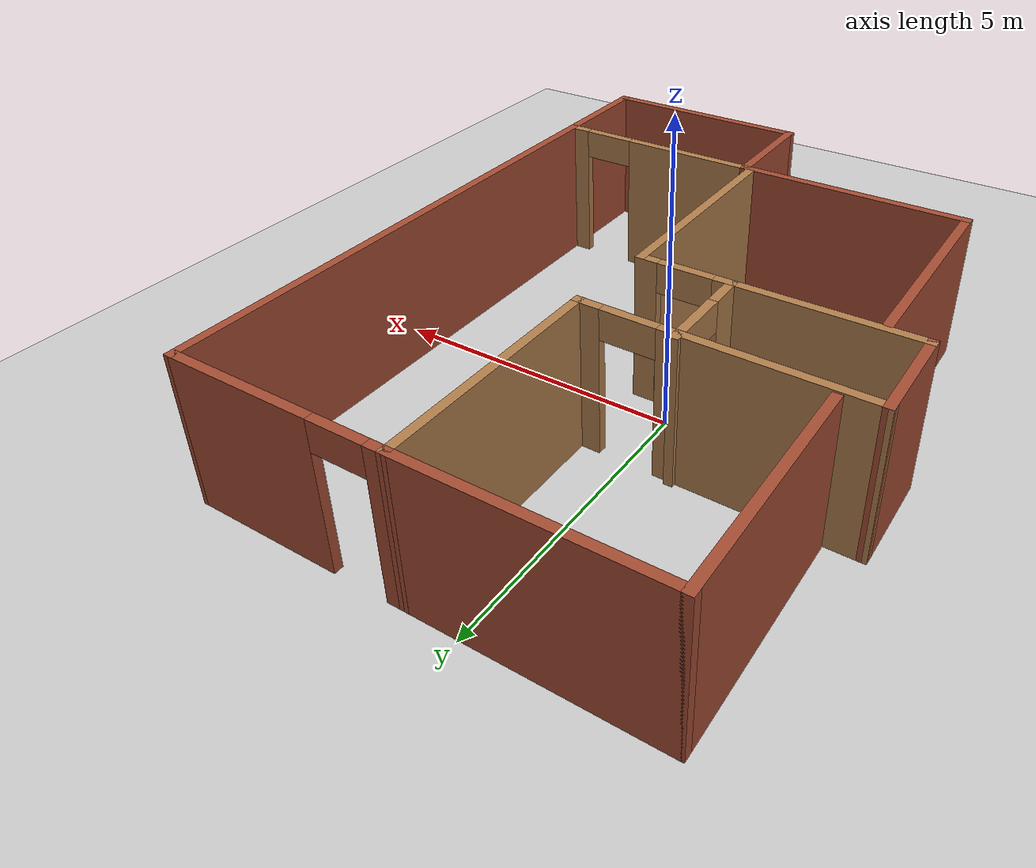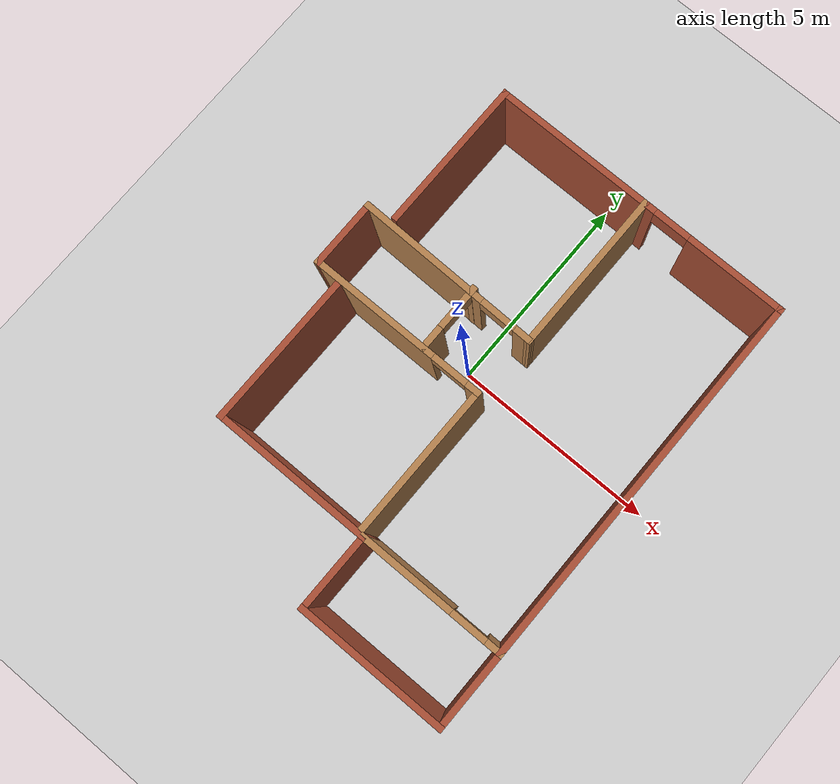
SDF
<sdf version="1.7">
 <world name="default">
  <light name="sun" type="directional">
   <pose>0 0 10 0 -0 0</pose>
   <diffuse>0.8 0.8 0.8 1</diffuse>
   <specular>0.2 0.2 0.2 1</specular>
   <attenuation>
    <range>1000</range>
    <constant>0.9</constant>
    <linear>0.01</linear>
    <quadratic>0.001</quadratic>
   </attenuation>
   <direction>-0.5 0.1 -0.9</direction>
   <spot><inner_angle>0</inner_angle><outer_angle>0</outer_angle><falloff>0</falloff></spot>
  </light>
  <model name="ground_plane">
   <static>1</static>
   <link name="link">
    <collision name="collision">
     <geometry><plane><normal>0 0 1</normal><size>100 100</size></plane></geometry>
     <surface><friction><ode><mu>100</mu><mu2>50</mu2></ode></friction></surface>
    </collision>
    <visual name="visual">
     <cast_shadows>0</cast_shadows>
     <geometry><plane><normal>0 0 1</normal><size>100 100</size></plane></geometry>
     <material>
      <script><uri>file://media/materials/scripts/gazebo.material</uri><name>Gazebo/Grey</name></script>
     </material>
    </visual>
   </link>
  </model>
  <gravity>0 0 -9.8</gravity>
  <magnetic_field>6e-06 2.3e-05 -4.2e-05</magnetic_field>
  <atmosphere type="adiabatic"/>
  <physics type="ode">
   <max_step_size>0.001</max_step_size>
   <real_time_factor>1</real_time_factor>
   <real_time_update_rate>1000</real_time_update_rate>
  </physics>
  <scene><ambient>0.4 0.4 0.4 1</ambient><background>0.7 0.7 0.7 1</background><shadows>1</shadows></scene>
  <audio><device>default</device></audio>
  <spherical_coordinates>
   <surface_model>EARTH_WGS84</surface_model>
   <latitude_deg>0</latitude_deg>
   <longitude_deg>0</longitude_deg>
   <elevation>0</elevation>
   <heading_deg>0</heading_deg>
  </spherical_coordinates>
  <model name="house">
   <pose>0.422734 -0.582992 0 0 -0 0</pose>
   <link name="Wall_11">
    <collision name="Wall_11_Collision">
     <geometry><box><size>1.75 0.15 2.5</size></box></geometry>
     <pose>0 0 1.25 0 -0 0</pose>
    </collision>
    <visual name="Wall_11_Visual">
     <pose>0 0 1.25 0 -0 0</pose>
     <geometry><box><size>1.75 0.15 2.5</size></box></geometry>
     <material>
      <script><uri>file://media/materials/scripts/gazebo.material</uri><name>Gazebo/Bricks</name></script>
      <ambient>1 1 1 1</ambient>
     </material>
     <meta><layer>0</layer></meta>
    </visual>
    <pose>-4.03492 0.902294 0 0 -0 -1.5708</pose>
   </link>
   <link name="Wall_12">
    <pose>-1.85992 0.102294 0 0 -0 0</pose>
    <visual name="Wall_12_Visual_0">
     <pose>-0.636748 0 1.25 0 -0 0</pose>
     <geometry><box><size>3.2265 0.15 2.5</size></box></geometry>
     <material>
      <script><uri>file://media/materials/scripts/gazebo.material</uri><name>Gazebo/Wood</name></script>
      <ambient>1 1 1 1</ambient>
     </material>
     <meta><layer>0</layer></meta>
    </visual>
    <collision name="Wall_12_Collision_0">
     <geometry><box><size>3.2265 0.15 2.5</size></box></geometry>
     <pose>-0.636748 0 1.25 0 -0 0</pose>
    </collision>
    <visual name="Wall_12_Visual_1">
     <pose>2.06325 0 1.25 0 -0 0</pose>
     <geometry><box><size>0.373497 0.15 2.5</size></box></geometry>
     <material>
      <script><uri>file://media/materials/scripts/gazebo.material</uri><name>Gazebo/Wood</name></script>
      <ambient>1 1 1 1</ambient>
     </material>
     <meta><layer>0</layer></meta>
    </visual>
    <collision name="Wall_12_Collision_1">
     <geometry><box><size>0.373497 0.15 2.5</size></box></geometry>
     <pose>2.06325 0 1.25 0 -0 0</pose>
    </collision>
    <visual name="Wall_12_Visual_2">
     <pose>1.4265 0 2.25 0 -0 0</pose>
     <geometry><box><size>0.9 0.15 0.5</size></box></geometry>
     <material>
      <script><uri>file://media/materials/scripts/gazebo.material</uri><name>Gazebo/Wood</name></script>
      <ambient>1 1 1 1</ambient>
     </material>
     <meta><layer>0</layer></meta>
    </visual>
    <collision name="Wall_12_Collision_2">
     <geometry><box><size>0.9 0.15 0.5</size></box></geometry>
     <pose>1.4265 0 2.25 0 -0 0</pose>
    </collision>
   </link>
   <link name="Wall_15">
    <collision name="Wall_15_Collision">
     <geometry><box><size>3.75 0.15 2.5</size></box></geometry>
     <pose>0 0 1.25 0 -0 0</pose>
    </collision>
    <visual name="Wall_15_Visual">
     <pose>0 0 1.25 0 -0 0</pose>
     <geometry><box><size>3.75 0.15 2.5</size></box></geometry>
     <material>
      <script><uri>file://media/materials/scripts/gazebo.material</uri><name>Gazebo/Wood</name></script>
      <ambient>1 1 1 1</ambient>
     </material>
     <meta><layer>0</layer></meta>
    </visual>
    <pose>0.315076 -1.69771 0 0 -0 -1.5708</pose>
   </link>
   <link name="Wall_17">
    <collision name="Wall_17_Collision">
     <geometry><box><size>3.75 0.15 2.5</size></box></geometry>
     <pose>0 0 1.25 0 -0 0</pose>
    </collision>
    <visual name="Wall_17_Visual">
     <pose>0 0 1.25 0 -0 0</pose>
     <geometry><box><size>3.75 0.15 2.5</size></box></geometry>
     <material>
      <script><uri>file://media/materials/scripts/gazebo.material</uri><name>Gazebo/Bricks</name></script>
      <ambient>1 1 1 1</ambient>
     </material>
     <meta><layer>0</layer></meta>
    </visual>
    <pose>-3.41398 -1.82835 0 0 -0 -1.5708</pose>
   </link>
   <link name="Wall_18">
    <collision name="Wall_18_Collision">
     <geometry><box><size>4 0.15 2.5</size></box></geometry>
     <pose>0 0 1.25 0 -0 0</pose>
    </collision>
    <visual name="Wall_18_Visual">
     <pose>0 0 1.25 0 -0 0</pose>
     <geometry><box><size>4 0.15 2.5</size></box></geometry>
     <material>
      <script><uri>file://media/materials/scripts/gazebo.material</uri><name>Gazebo/Bricks</name></script>
      <ambient>1 1 1 1</ambient>
     </material>
     <meta><layer>0</layer></meta>
    </visual>
    <pose>-1.48898 -3.62835 0 0 -0 0</pose>
   </link>
   <link name="Wall_19">
    <pose>2.23602 -3.62835 0 0 -0 0</pose>
    <visual name="Wall_19_Visual_0">
     <pose>-0.674203 0 1.25 0 -0 0</pose>
     <geometry><box><size>2.40159 0.15 2.5</size></box></geometry>
     <material>
      <script><uri>file://media/materials/scripts/gazebo.material</uri><name>Gazebo/Wood</name></script>
      <ambient>1 1 1 1</ambient>
     </material>
     <meta><layer>0</layer></meta>
    </visual>
    <collision name="Wall_19_Collision_0">
     <geometry><box><size>2.40159 0.15 2.5</size></box></geometry>
     <pose>-0.674203 0 1.25 0 -0 0</pose>
    </collision>
    <visual name="Wall_19_Visual_1">
     <pose>1.6508 0 1.25 0 -0 0</pose>
     <geometry><box><size>0.448407 0.15 2.5</size></box></geometry>
     <material>
      <script><uri>file://media/materials/scripts/gazebo.material</uri><name>Gazebo/Wood</name></script>
      <ambient>1 1 1 1</ambient>
     </material>
     <meta><layer>0</layer></meta>
    </visual>
    <collision name="Wall_19_Collision_1">
     <geometry><box><size>0.448407 0.15 2.5</size></box></geometry>
     <pose>1.6508 0 1.25 0 -0 0</pose>
    </collision>
    <visual name="Wall_19_Visual_2">
     <pose>0.976593 0 2.25 0 -0 0</pose>
     <geometry><box><size>0.9 0.15 0.5</size></box></geometry>
     <material>
      <script><uri>file://media/materials/scripts/gazebo.material</uri><name>Gazebo/Wood</name></script>
      <ambient>1 1 1 1</ambient>
     </material>
     <meta><layer>0</layer></meta>
    </visual>
    <collision name="Wall_19_Collision_2">
     <geometry><box><size>0.9 0.15 0.5</size></box></geometry>
     <pose>0.976593 0 2.25 0 -0 0</pose>
    </collision>
   </link>
   <link name="Wall_2">
    <collision name="Wall_2_Collision">
     <geometry><box><size>3.75 0.15 2.5</size></box></geometry>
     <pose>0 0 1.25 0 -0 0</pose>
    </collision>
    <visual name="Wall_2_Visual">
     <pose>0 0 1.25 0 -0 0</pose>
     <geometry><box><size>3.75 0.15 2.5</size></box></geometry>
     <material>
      <script><uri>file://media/materials/scripts/gazebo.material</uri><name>Gazebo/Bricks</name></script>
      <ambient>0.996078 0.47451 0.0196078 1</ambient>
     </material>
     <meta><layer>0</layer></meta>
    </visual>
    <pose>-3.42008 3.67822 0 0 -0 -1.5708</pose>
   </link>
   <link name="Wall_20">
    <collision name="Wall_20_Collision">
     <geometry><box><size>2 0.15 2.5</size></box></geometry>
     <pose>0 0 1.25 0 -0 0</pose>
    </collision>
    <visual name="Wall_20_Visual">
     <pose>0 0 1.25 0 -0 0</pose>
     <geometry><box><size>2 0.15 2.5</size></box></geometry>
     <material>
      <script><uri>file://media/materials/scripts/gazebo.material</uri><name>Gazebo/Bricks</name></script>
      <ambient>1 1 1 1</ambient>
     </material>
     <meta><layer>0</layer></meta>
    </visual>
    <pose>4.03602 -4.55335 0 0 -0 -1.5708</pose>
   </link>
   <link name="Wall_21">
    <collision name="Wall_21_Collision">
     <geometry><box><size>3.75 0.15 2.5</size></box></geometry>
     <pose>0 0 1.25 0 -0 0</pose>
    </collision>
    <visual name="Wall_21_Visual">
     <pose>0 0 1.25 0 -0 0</pose>
     <geometry><box><size>3.75 0.15 2.5</size></box></geometry>
     <material>
      <script><uri>file://media/materials/scripts/gazebo.material</uri><name>Gazebo/Bricks</name></script>
      <ambient>1 1 1 1</ambient>
     </material>
     <meta><layer>0</layer></meta>
    </visual>
    <pose>2.23602 -5.47835 0 0 -0 3.14159</pose>
   </link>
   <link name="Wall_22">
    <collision name="Wall_22_Collision">
     <geometry><box><size>2 0.15 2.5</size></box></geometry>
     <pose>0 0 1.25 0 -0 0</pose>
    </collision>
    <visual name="Wall_22_Visual">
     <pose>0 0 1.25 0 -0 0</pose>
     <geometry><box><size>2 0.15 2.5</size></box></geometry>
     <material>
      <script><uri>file://media/materials/scripts/gazebo.material</uri><name>Gazebo/Bricks</name></script>
      <ambient>1 1 1 1</ambient>
     </material>
     <meta><layer>0</layer></meta>
    </visual>
    <pose>0.436021 -4.55335 0 0 -0 1.5708</pose>
   </link>
   <link name="Wall_24">
    <pose>-1.16235 0.927863 0 0 -0 1.5708</pose>
    <visual name="Wall_24_Visual_0">
     <pose>-0.564917 0 1.25 0 -0 0</pose>
     <geometry><box><size>0.620166 0.15 2.5</size></box></geometry>
     <material>
      <script><uri>file://media/materials/scripts/gazebo.material</uri><name>Gazebo/Wood</name></script>
      <ambient>1 1 1 1</ambient>
     </material>
     <meta><layer>0</layer></meta>
    </visual>
    <collision name="Wall_24_Collision_0">
     <geometry><box><size>0.620166 0.15 2.5</size></box></geometry>
     <pose>-0.564917 0 1.25 0 -0 0</pose>
    </collision>
    <visual name="Wall_24_Visual_1">
     <pose>0.760083 0 1.25 0 -0 0</pose>
     <geometry><box><size>0.229834 0.15 2.5</size></box></geometry>
     <material>
      <script><uri>file://media/materials/scripts/gazebo.material</uri><name>Gazebo/Wood</name></script>
      <ambient>1 1 1 1</ambient>
     </material>
     <meta><layer>0</layer></meta>
    </visual>
    <collision name="Wall_24_Collision_1">
     <geometry><box><size>0.229834 0.15 2.5</size></box></geometry>
     <pose>0.760083 0 1.25 0 -0 0</pose>
    </collision>
    <visual name="Wall_24_Visual_2">
     <pose>0.195166 0 2.25 0 -0 0</pose>
     <geometry><box><size>0.9 0.15 0.5</size></box></geometry>
     <material>
      <script><uri>file://media/materials/scripts/gazebo.material</uri><name>Gazebo/Wood</name></script>
      <ambient>1 1 1 1</ambient>
     </material>
     <meta><layer>0</layer></meta>
    </visual>
    <collision name="Wall_24_Collision_2">
     <geometry><box><size>0.9 0.15 0.5</size></box></geometry>
     <pose>0.195166 0 2.25 0 -0 0</pose>
    </collision>
   </link>
   <link name="Wall_26">
    <collision name="Wall_26_Collision">
     <geometry><box><size>9.25 0.15 2.5</size></box></geometry>
     <pose>0 0 1.25 0 -0 0</pose>
    </collision>
    <visual name="Wall_26_Visual">
     <pose>0 0 1.25 0 -0 0</pose>
     <geometry><box><size>9.25 0.15 2.5</size></box></geometry>
     <material>
      <script><uri>file://media/materials/scripts/gazebo.material</uri><name>Gazebo/Bricks</name></script>
      <ambient>1 1 1 1</ambient>
     </material>
     <meta><layer>0</layer></meta>
    </visual>
    <pose>4.03602 0.921647 0 0 -0 1.5708</pose>
   </link>
   <link name="Wall_27">
    <pose>2.23297 5.47493 0 0 -0 3.13977</pose>
    <visual name="Wall_27_Visual_0">
     <pose>-0.628658 0 1.25 0 -0 0</pose>
     <geometry><box><size>2.49879 0.15 2.5</size></box></geometry>
     <material>
      <script><uri>file://media/materials/scripts/gazebo.material</uri><name>Gazebo/Bricks</name></script>
      <ambient>1 1 1 1</ambient>
     </material>
     <meta><layer>0</layer></meta>
    </visual>
    <collision name="Wall_27_Collision_0">
     <geometry><box><size>2.49879 0.15 2.5</size></box></geometry>
     <pose>-0.628658 0 1.25 0 -0 0</pose>
    </collision>
    <visual name="Wall_27_Visual_1">
     <pose>1.6994 0 1.25 0 -0 0</pose>
     <geometry><box><size>0.357316 0.15 2.5</size></box></geometry>
     <material>
      <script><uri>file://media/materials/scripts/gazebo.material</uri><name>Gazebo/Bricks</name></script>
      <ambient>1 1 1 1</ambient>
     </material>
     <meta><layer>0</layer></meta>
    </visual>
    <collision name="Wall_27_Collision_1">
     <geometry><box><size>0.357316 0.15 2.5</size></box></geometry>
     <pose>1.6994 0 1.25 0 -0 0</pose>
    </collision>
    <visual name="Wall_27_Visual_2">
     <pose>1.07074 0 2.25 0 -0 0</pose>
     <geometry><box><size>0.9 0.15 0.5</size></box></geometry>
     <material>
      <script><uri>file://media/materials/scripts/gazebo.material</uri><name>Gazebo/Bricks</name></script>
      <ambient>1 1 1 1</ambient>
     </material>
     <meta><layer>0</layer></meta>
    </visual>
    <collision name="Wall_27_Collision_2">
     <geometry><box><size>0.9 0.15 0.5</size></box></geometry>
     <pose>1.07074 0 2.25 0 -0 0</pose>
    </collision>
   </link>
   <link name="Wall_6">
    <collision name="Wall_6_Collision">
     <geometry><box><size>4 0.15 2.5</size></box></geometry>
     <pose>0 0 1.25 0 -0 0</pose>
    </collision>
    <visual name="Wall_6_Visual">
     <pose>0 0 1.25 0 -0 0</pose>
     <geometry><box><size>4 0.15 2.5</size></box></geometry>
     <material>
      <script><uri>file://media/materials/scripts/gazebo.material</uri><name>Gazebo/Bricks</name></script>
      <ambient>1 1 1 1</ambient>
     </material>
     <meta><layer>0</layer></meta>
    </visual>
    <pose>-1.49508 5.47822 0 0 -0 0</pose>
   </link>
   <link name="Wall_7">
    <collision name="Wall_7_Collision">
     <geometry><box><size>4 0.15 2.5</size></box></geometry>
     <pose>0 0 1.25 0 -0 0</pose>
    </collision>
    <visual name="Wall_7_Visual">
     <pose>0 0 1.25 0 -0 0</pose>
     <geometry><box><size>4 0.15 2.5</size></box></geometry>
     <material>
      <script><uri>file://media/materials/scripts/gazebo.material</uri><name>Gazebo/Wood</name></script>
      <ambient>1 1 1 1</ambient>
     </material>
     <meta><layer>0</layer></meta>
    </visual>
    <pose>0.429917 3.55322 0 0 -0 -1.5708</pose>
   </link>
   <link name="Wall_9">
    <pose>-1.8025 1.66525 0 0 -0 -0.01659</pose>
    <visual name="Wall_9_Visual_0">
     <pose>-0.682043 0 1.25 0 -0 0</pose>
     <geometry><box><size>3.25137 0.15 2.5</size></box></geometry>
     <material>
      <script><uri>file://media/materials/scripts/gazebo.material</uri><name>Gazebo/Wood</name></script>
      <ambient>1 1 1 1</ambient>
     </material>
     <meta><layer>0</layer></meta>
    </visual>
    <collision name="Wall_9_Collision_0">
     <geometry><box><size>3.25137 0.15 2.5</size></box></geometry>
     <pose>-0.682043 0 1.25 0 -0 0</pose>
    </collision>
    <visual name="Wall_9_Visual_1">
     <pose>2.07568 0 1.25 0 -0 0</pose>
     <geometry><box><size>0.464087 0.15 2.5</size></box></geometry>
     <material>
      <script><uri>file://media/materials/scripts/gazebo.material</uri><name>Gazebo/Wood</name></script>
      <ambient>1 1 1 1</ambient>
     </material>
     <meta><layer>0</layer></meta>
    </visual>
    <collision name="Wall_9_Collision_1">
     <geometry><box><size>0.464087 0.15 2.5</size></box></geometry>
     <pose>2.07568 0 1.25 0 -0 0</pose>
    </collision>
    <visual name="Wall_9_Visual_2">
     <pose>1.39364 0 2.25 0 -0 0</pose>
     <geometry><box><size>0.9 0.15 0.5</size></box></geometry>
     <material>
      <script><uri>file://media/materials/scripts/gazebo.material</uri><name>Gazebo/Wood</name></script>
      <ambient>1 1 1 1</ambient>
     </material>
     <meta><layer>0</layer></meta>
    </visual>
    <collision name="Wall_9_Collision_2">
     <geometry><box><size>0.9 0.15 0.5</size></box></geometry>
     <pose>1.39364 0 2.25 0 -0 0</pose>
    </collision>
   </link>
   <static>1</static>
  </model>
 </world>
</sdf>
